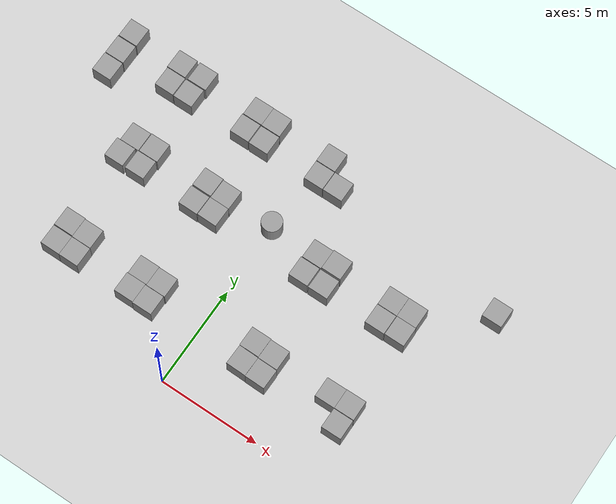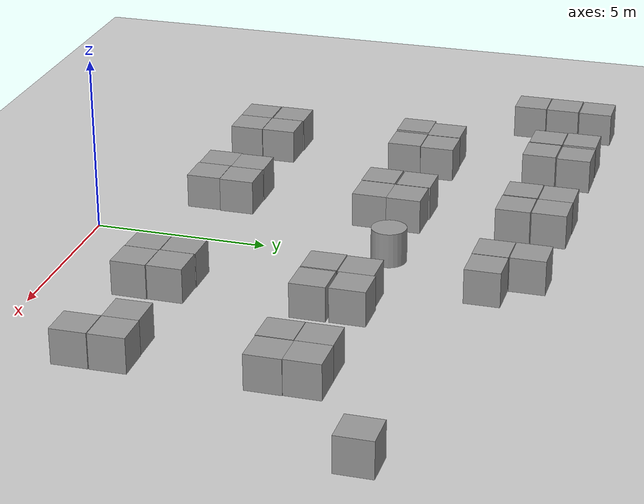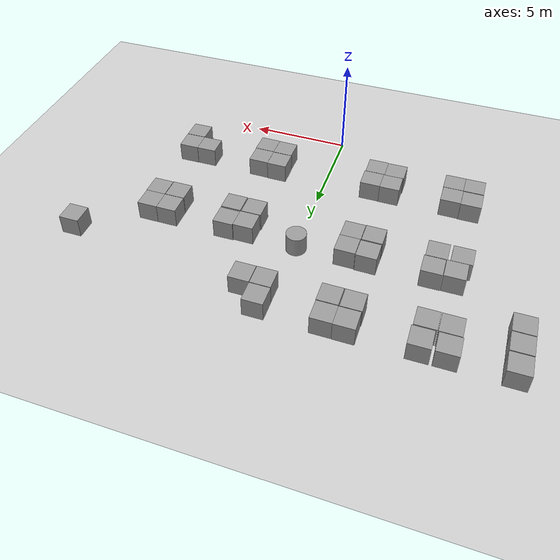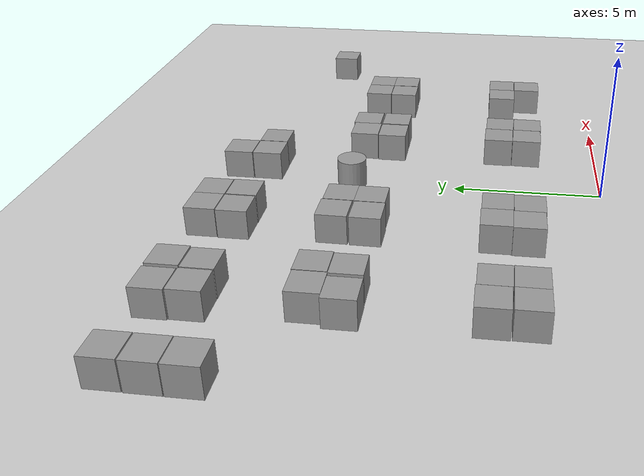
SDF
<sdf version="1.7">
 <world name="default">
  <model name="ground_plane">
   <static>1</static>
   <link name="link">
    <collision name="collision">
     <geometry><plane><normal>0 0 1</normal><size>100 100</size></plane></geometry>
     <surface>
      <contact><collide_bitmask>65535</collide_bitmask></contact>
      <friction><ode><mu>100</mu><mu2>50</mu2></ode></friction>
     </surface>
    </collision>
    <visual name="visual">
     <cast_shadows>0</cast_shadows>
     <geometry><plane><normal>0 0 1</normal><size>100 100</size></plane></geometry>
     <material>
      <script><uri>file://media/materials/scripts/gazebo.material</uri><name>Gazebo/Grey</name></script>
     </material>
    </visual>
   </link>
  </model>
  <model name="unit_box">
   <pose>7.49314 7.5498 0.5 0 0 -0.000638</pose>
   <link name="link">
    <inertial>
     <mass>1</mass>
     <inertia>
      <ixx>0.166667</ixx>
      <ixy>0</ixy>
      <ixz>0</ixz>
      <iyy>0.166667</iyy>
      <iyz>0</iyz>
      <izz>0.166667</izz>
     </inertia>
    </inertial>
    <collision name="collision"><geometry><box><size>1 1 1</size></box></geometry></collision>
    <visual name="visual">
     <geometry><box><size>1 1 1</size></box></geometry>
     <material>
      <script><name>Gazebo/Grey</name><uri>file://media/materials/scripts/gazebo.material</uri></script>
     </material>
    </visual>
   </link>
  </model>
  <model name="unit_box_clone_0">
   <pose>6.47181 7.5316 0.499995 1e-05 -0 -0.001722</pose>
   <link name="link">
    <inertial>
     <mass>1</mass>
     <inertia>
      <ixx>0.166667</ixx>
      <ixy>0</ixy>
      <ixz>0</ixz>
      <iyy>0.166667</iyy>
      <iyz>0</iyz>
      <izz>0.166667</izz>
     </inertia>
    </inertial>
    <collision name="collision"><geometry><box><size>1 1 1</size></box></geometry></collision>
    <visual name="visual">
     <geometry><box><size>1 1 1</size></box></geometry>
     <material>
      <script><name>Gazebo/Grey</name><uri>file://media/materials/scripts/gazebo.material</uri></script>
     </material>
    </visual>
   </link>
  </model>
  <model name="unit_box_clone_1_clone">
   <pose>7.53529 3.52339 0.499995 -0 1e-05 0.009687</pose>
   <link name="link">
    <inertial>
     <mass>1</mass>
     <inertia>
      <ixx>0.166667</ixx>
      <ixy>0</ixy>
      <ixz>0</ixz>
      <iyy>0.166667</iyy>
      <iyz>0</iyz>
      <izz>0.166667</izz>
     </inertia>
    </inertial>
    <collision name="collision"><geometry><box><size>1 1 1</size></box></geometry></collision>
    <visual name="visual">
     <geometry><box><size>1 1 1</size></box></geometry>
     <material>
      <script><name>Gazebo/Grey</name><uri>file://media/materials/scripts/gazebo.material</uri></script>
     </material>
    </visual>
   </link>
  </model>
  <model name="unit_box_clone_1_clone_clone">
   <pose>6.53542 3.50543 0.499995 -0 1e-05 0.009687</pose>
   <link name="link">
    <inertial>
     <mass>1</mass>
     <inertia>
      <ixx>0.166667</ixx>
      <ixy>0</ixy>
      <ixz>0</ixz>
      <iyy>0.166667</iyy>
      <iyz>0</iyz>
      <izz>0.166667</izz>
     </inertia>
    </inertial>
    <collision name="collision"><geometry><box><size>1 1 1</size></box></geometry></collision>
    <visual name="visual">
     <geometry><box><size>1 1 1</size></box></geometry>
     <material>
      <script><name>Gazebo/Grey</name><uri>file://media/materials/scripts/gazebo.material</uri></script>
     </material>
    </visual>
   </link>
  </model>
  <model name="unit_box_clone_1_clone_clone_0">
   <pose>7.54143 2.5029 0.499995 -0 1e-05 0.006781</pose>
   <link name="link">
    <inertial>
     <mass>1</mass>
     <inertia>
      <ixx>0.166667</ixx>
      <ixy>0</ixy>
      <ixz>0</ixz>
      <iyy>0.166667</iyy>
      <iyz>0</iyz>
      <izz>0.166667</izz>
     </inertia>
    </inertial>
    <collision name="collision"><geometry><box><size>1 1 1</size></box></geometry></collision>
    <visual name="visual">
     <geometry><box><size>1 1 1</size></box></geometry>
     <material>
      <script><name>Gazebo/Grey</name><uri>file://media/materials/scripts/gazebo.material</uri></script>
     </material>
    </visual>
   </link>
  </model>
  <model name="unit_box_clone_0_clone">
   <pose>3.49094 8.54378 0.499995 1e-05 -0 0.000131</pose>
   <link name="link">
    <inertial>
     <mass>1</mass>
     <inertia>
      <ixx>0.166667</ixx>
      <ixy>0</ixy>
      <ixz>0</ixz>
      <iyy>0.166667</iyy>
      <iyz>0</iyz>
      <izz>0.166667</izz>
     </inertia>
    </inertial>
    <collision name="collision"><geometry><box><size>1 1 1</size></box></geometry></collision>
    <visual name="visual">
     <geometry><box><size>1 1 1</size></box></geometry>
     <material>
      <script><name>Gazebo/Grey</name><uri>file://media/materials/scripts/gazebo.material</uri></script>
     </material>
    </visual>
   </link>
  </model>
  <model name="unit_box_clone_0_clone_0">
   <pose>2.49093 8.49591 0.499995 0 -1e-05 0.000131</pose>
   <link name="link">
    <inertial>
     <mass>1</mass>
     <inertia>
      <ixx>0.166667</ixx>
      <ixy>0</ixy>
      <ixz>0</ixz>
      <iyy>0.166667</iyy>
      <iyz>0</iyz>
      <izz>0.166667</izz>
     </inertia>
    </inertial>
    <collision name="collision"><geometry><box><size>1 1 1</size></box></geometry></collision>
    <visual name="visual">
     <geometry><box><size>1 1 1</size></box></geometry>
     <material>
      <script><name>Gazebo/Grey</name><uri>file://media/materials/scripts/gazebo.material</uri></script>
     </material>
    </visual>
   </link>
  </model>
  <model name="unit_box_clone_0_clone_1">
   <pose>3.50263 7.46389 0.499995 0 -1e-05 0</pose>
   <link name="link">
    <inertial>
     <mass>1</mass>
     <inertia>
      <ixx>0.166667</ixx>
      <ixy>0</ixy>
      <ixz>0</ixz>
      <iyy>0.166667</iyy>
      <iyz>0</iyz>
      <izz>0.166667</izz>
     </inertia>
    </inertial>
    <collision name="collision"><geometry><box><size>1 1 1</size></box></geometry></collision>
    <visual name="visual">
     <geometry><box><size>1 1 1</size></box></geometry>
     <material>
      <script><name>Gazebo/Grey</name><uri>file://media/materials/scripts/gazebo.material</uri></script>
     </material>
    </visual>
   </link>
  </model>
  <model name="unit_box_clone_0_clone_2">
   <pose>2.45095 7.46934 0.499995 1e-05 -0 0</pose>
   <link name="link">
    <inertial>
     <mass>1</mass>
     <inertia>
      <ixx>0.166667</ixx>
      <ixy>0</ixy>
      <ixz>0</ixz>
      <iyy>0.166667</iyy>
      <iyz>0</iyz>
      <izz>0.166667</izz>
     </inertia>
    </inertial>
    <collision name="collision"><geometry><box><size>1 1 1</size></box></geometry></collision>
    <visual name="visual">
     <geometry><box><size>1 1 1</size></box></geometry>
     <material>
      <script><name>Gazebo/Grey</name><uri>file://media/materials/scripts/gazebo.material</uri></script>
     </material>
    </visual>
   </link>
  </model>
  <model name="unit_box_clone_0_clone_3">
   <pose>3.5212 3.52929 0.499995 0 -1e-05 -0.007133</pose>
   <link name="link">
    <inertial>
     <mass>1</mass>
     <inertia>
      <ixx>0.166667</ixx>
      <ixy>0</ixy>
      <ixz>0</ixz>
      <iyy>0.166667</iyy>
      <iyz>0</iyz>
      <izz>0.166667</izz>
     </inertia>
    </inertial>
    <collision name="collision"><geometry><box><size>1 1 1</size></box></geometry></collision>
    <visual name="visual">
     <geometry><box><size>1 1 1</size></box></geometry>
     <material>
      <script><name>Gazebo/Grey</name><uri>file://media/materials/scripts/gazebo.material</uri></script>
     </material>
    </visual>
   </link>
  </model>
  <model name="unit_box_clone_0_clone_4">
   <pose>3.52985 2.51505 0.499995 -1e-05 -0 -0.015038</pose>
   <link name="link">
    <inertial>
     <mass>1</mass>
     <inertia>
      <ixx>0.166667</ixx>
      <ixy>0</ixy>
      <ixz>0</ixz>
      <iyy>0.166667</iyy>
      <iyz>0</iyz>
      <izz>0.166667</izz>
     </inertia>
    </inertial>
    <collision name="collision"><geometry><box><size>1 1 1</size></box></geometry></collision>
    <visual name="visual">
     <geometry><box><size>1 1 1</size></box></geometry>
     <material>
      <script><name>Gazebo/Grey</name><uri>file://media/materials/scripts/gazebo.material</uri></script>
     </material>
    </visual>
   </link>
  </model>
  <model name="unit_box_clone_0_clone_5">
   <pose>2.51928 3.55752 0.499995 1e-05 0 -0.004979</pose>
   <link name="link">
    <inertial>
     <mass>1</mass>
     <inertia>
      <ixx>0.166667</ixx>
      <ixy>0</ixy>
      <ixz>0</ixz>
      <iyy>0.166667</iyy>
      <iyz>0</iyz>
      <izz>0.166667</izz>
     </inertia>
    </inertial>
    <collision name="collision"><geometry><box><size>1 1 1</size></box></geometry></collision>
    <visual name="visual">
     <geometry><box><size>1 1 1</size></box></geometry>
     <material>
      <script><name>Gazebo/Grey</name><uri>file://media/materials/scripts/gazebo.material</uri></script>
     </material>
    </visual>
   </link>
  </model>
  <model name="unit_box_clone_0_clone_6">
   <pose>2.52846 2.5417 0.499995 0 -1e-05 -0.018248</pose>
   <link name="link">
    <inertial>
     <mass>1</mass>
     <inertia>
      <ixx>0.166667</ixx>
      <ixy>0</ixy>
      <ixz>0</ixz>
      <iyy>0.166667</iyy>
      <iyz>0</iyz>
      <izz>0.166667</izz>
     </inertia>
    </inertial>
    <collision name="collision"><geometry><box><size>1 1 1</size></box></geometry></collision>
    <visual name="visual">
     <geometry><box><size>1 1 1</size></box></geometry>
     <material>
      <script><name>Gazebo/Grey</name><uri>file://media/materials/scripts/gazebo.material</uri></script>
     </material>
    </visual>
   </link>
  </model>
  <model name="unit_box_clone_0_clone_15">
   <pose>-2.48703 8.50765 0.499995 0 -1e-05 -0.008055</pose>
   <link name="link">
    <inertial>
     <mass>1</mass>
     <inertia>
      <ixx>0.166667</ixx>
      <ixy>0</ixy>
      <ixz>0</ixz>
      <iyy>0.166667</iyy>
      <iyz>0</iyz>
      <izz>0.166667</izz>
     </inertia>
    </inertial>
    <collision name="collision"><geometry><box><size>1 1 1</size></box></geometry></collision>
    <visual name="visual">
     <geometry><box><size>1 1 1</size></box></geometry>
     <material>
      <script><name>Gazebo/Grey</name><uri>file://media/materials/scripts/gazebo.material</uri></script>
     </material>
    </visual>
   </link>
  </model>
  <model name="unit_box_clone_0_clone_16">
   <pose>-2.50538 7.5076 0.499995 0 -1e-05 -0.008385</pose>
   <link name="link">
    <inertial>
     <mass>1</mass>
     <inertia>
      <ixx>0.166667</ixx>
      <ixy>0</ixy>
      <ixz>0</ixz>
      <iyy>0.166667</iyy>
      <iyz>0</iyz>
      <izz>0.166667</izz>
     </inertia>
    </inertial>
    <collision name="collision"><geometry><box><size>1 1 1</size></box></geometry></collision>
    <visual name="visual">
     <geometry><box><size>1 1 1</size></box></geometry>
     <material>
      <script><name>Gazebo/Grey</name><uri>file://media/materials/scripts/gazebo.material</uri></script>
     </material>
    </visual>
   </link>
  </model>
  <model name="unit_box_clone_0_clone_17">
   <pose>-3.50516 8.55328 0.499995 0 -1e-05 -0.009167</pose>
   <link name="link">
    <inertial>
     <mass>1</mass>
     <inertia>
      <ixx>0.166667</ixx>
      <ixy>0</ixy>
      <ixz>0</ixz>
      <iyy>0.166667</iyy>
      <iyz>0</iyz>
      <izz>0.166667</izz>
     </inertia>
    </inertial>
    <collision name="collision"><geometry><box><size>1 1 1</size></box></geometry></collision>
    <visual name="visual">
     <geometry><box><size>1 1 1</size></box></geometry>
     <material>
      <script><name>Gazebo/Grey</name><uri>file://media/materials/scripts/gazebo.material</uri></script>
     </material>
    </visual>
   </link>
  </model>
  <model name="unit_box_clone_0_clone_18">
   <pose>-3.52598 7.49579 0.499995 -1e-05 -0 -0.009373</pose>
   <link name="link">
    <inertial>
     <mass>1</mass>
     <inertia>
      <ixx>0.166667</ixx>
      <ixy>0</ixy>
      <ixz>0</ixz>
      <iyy>0.166667</iyy>
      <iyz>0</iyz>
      <izz>0.166667</izz>
     </inertia>
    </inertial>
    <collision name="collision"><geometry><box><size>1 1 1</size></box></geometry></collision>
    <visual name="visual">
     <geometry><box><size>1 1 1</size></box></geometry>
     <material>
      <script><name>Gazebo/Grey</name><uri>file://media/materials/scripts/gazebo.material</uri></script>
     </material>
    </visual>
   </link>
  </model>
  <model name="unit_box_clone_0_clone_16_clone">
   <pose>-2.46141 3.5011 0.499995 -0 -1e-05 0.00397</pose>
   <link name="link">
    <inertial>
     <mass>1</mass>
     <inertia>
      <ixx>0.166667</ixx>
      <ixy>0</ixy>
      <ixz>0</ixz>
      <iyy>0.166667</iyy>
      <iyz>0</iyz>
      <izz>0.166667</izz>
     </inertia>
    </inertial>
    <collision name="collision"><geometry><box><size>1 1 1</size></box></geometry></collision>
    <visual name="visual">
     <geometry><box><size>1 1 1</size></box></geometry>
     <material>
      <script><name>Gazebo/Grey</name><uri>file://media/materials/scripts/gazebo.material</uri></script>
     </material>
    </visual>
   </link>
  </model>
  <model name="unit_box_clone_0_clone_16_clone_0">
   <pose>-2.4961 2.4925 0.499995 -0 -1e-05 0.004518</pose>
   <link name="link">
    <inertial>
     <mass>1</mass>
     <inertia>
      <ixx>0.166667</ixx>
      <ixy>0</ixy>
      <ixz>0</ixz>
      <iyy>0.166667</iyy>
      <iyz>0</iyz>
      <izz>0.166667</izz>
     </inertia>
    </inertial>
    <collision name="collision"><geometry><box><size>1 1 1</size></box></geometry></collision>
    <visual name="visual">
     <geometry><box><size>1 1 1</size></box></geometry>
     <material>
      <script><name>Gazebo/Grey</name><uri>file://media/materials/scripts/gazebo.material</uri></script>
     </material>
    </visual>
   </link>
  </model>
  <model name="unit_box_clone_0_clone_16_clone_1">
   <pose>-3.46149 3.5153 0.499995 -1e-05 0 0.00397</pose>
   <link name="link">
    <inertial>
     <mass>1</mass>
     <inertia>
      <ixx>0.166667</ixx>
      <ixy>0</ixy>
      <ixz>0</ixz>
      <iyy>0.166667</iyy>
      <iyz>0</iyz>
      <izz>0.166667</izz>
     </inertia>
    </inertial>
    <collision name="collision"><geometry><box><size>1 1 1</size></box></geometry></collision>
    <visual name="visual">
     <geometry><box><size>1 1 1</size></box></geometry>
     <material>
      <script><name>Gazebo/Grey</name><uri>file://media/materials/scripts/gazebo.material</uri></script>
     </material>
    </visual>
   </link>
  </model>
  <model name="unit_box_clone_0_clone_16_clone_2">
   <pose>-3.49621 2.51482 0.499995 0 1e-05 0.004521</pose>
   <link name="link">
    <inertial>
     <mass>1</mass>
     <inertia>
      <ixx>0.166667</ixx>
      <ixy>0</ixy>
      <ixz>0</ixz>
      <iyy>0.166667</iyy>
      <iyz>0</iyz>
      <izz>0.166667</izz>
     </inertia>
    </inertial>
    <collision name="collision"><geometry><box><size>1 1 1</size></box></geometry></collision>
    <visual name="visual">
     <geometry><box><size>1 1 1</size></box></geometry>
     <material>
      <script><name>Gazebo/Grey</name><uri>file://media/materials/scripts/gazebo.material</uri></script>
     </material>
    </visual>
   </link>
  </model>
  <model name="unit_box_clone_0_clone_16_clone_3">
   <pose>-6.4514 8.53997 0.499995 1e-05 -0 0.003505</pose>
   <link name="link">
    <inertial>
     <mass>1</mass>
     <inertia>
      <ixx>0.166667</ixx>
      <ixy>0</ixy>
      <ixz>0</ixz>
      <iyy>0.166667</iyy>
      <iyz>0</iyz>
      <izz>0.166667</izz>
     </inertia>
    </inertial>
    <collision name="collision"><geometry><box><size>1 1 1</size></box></geometry></collision>
    <visual name="visual">
     <geometry><box><size>1 1 1</size></box></geometry>
     <material>
      <script><name>Gazebo/Grey</name><uri>file://media/materials/scripts/gazebo.material</uri></script>
     </material>
    </visual>
   </link>
  </model>
  <model name="unit_box_clone_0_clone_16_clone_4">
   <pose>-7.47192 8.51552 0.5 0 -0 0.005021</pose>
   <link name="link">
    <inertial>
     <mass>1</mass>
     <inertia>
      <ixx>0.166667</ixx>
      <ixy>0</ixy>
      <ixz>0</ixz>
      <iyy>0.166667</iyy>
      <iyz>0</iyz>
      <izz>0.166667</izz>
     </inertia>
    </inertial>
    <collision name="collision"><geometry><box><size>1 1 1</size></box></geometry></collision>
    <visual name="visual">
     <geometry><box><size>1 1 1</size></box></geometry>
     <material>
      <script><name>Gazebo/Grey</name><uri>file://media/materials/scripts/gazebo.material</uri></script>
     </material>
    </visual>
   </link>
  </model>
  <model name="unit_box_clone_0_clone_16_clone_5">
   <pose>-6.49815 7.5204 0.499995 1e-05 -0 0.005103</pose>
   <link name="link">
    <inertial>
     <mass>1</mass>
     <inertia>
      <ixx>0.166667</ixx>
      <ixy>0</ixy>
      <ixz>0</ixz>
      <iyy>0.166667</iyy>
      <iyz>0</iyz>
      <izz>0.166667</izz>
     </inertia>
    </inertial>
    <collision name="collision"><geometry><box><size>1 1 1</size></box></geometry></collision>
    <visual name="visual">
     <geometry><box><size>1 1 1</size></box></geometry>
     <material>
      <script><name>Gazebo/Grey</name><uri>file://media/materials/scripts/gazebo.material</uri></script>
     </material>
    </visual>
   </link>
  </model>
  <model name="unit_box_clone_0_clone_16_clone_6">
   <pose>-7.63286 7.50642 0.499995 1e-05 -0 0.00346</pose>
   <link name="link">
    <inertial>
     <mass>1</mass>
     <inertia>
      <ixx>0.166667</ixx>
      <ixy>0</ixy>
      <ixz>0</ixz>
      <iyy>0.166667</iyy>
      <iyz>0</iyz>
      <izz>0.166667</izz>
     </inertia>
    </inertial>
    <collision name="collision"><geometry><box><size>1 1 1</size></box></geometry></collision>
    <visual name="visual">
     <geometry><box><size>1 1 1</size></box></geometry>
     <material>
      <script><name>Gazebo/Grey</name><uri>file://media/materials/scripts/gazebo.material</uri></script>
     </material>
    </visual>
   </link>
  </model>
  <model name="unit_box_clone_0_clone_16_clone_7">
   <pose>-6.51474 3.49543 0.499995 0 -1e-05 0</pose>
   <link name="link">
    <inertial>
     <mass>1</mass>
     <inertia>
      <ixx>0.166667</ixx>
      <ixy>0</ixy>
      <ixz>0</ixz>
      <iyy>0.166667</iyy>
      <iyz>0</iyz>
      <izz>0.166667</izz>
     </inertia>
    </inertial>
    <collision name="collision"><geometry><box><size>1 1 1</size></box></geometry></collision>
    <visual name="visual">
     <geometry><box><size>1 1 1</size></box></geometry>
     <material>
      <script><name>Gazebo/Grey</name><uri>file://media/materials/scripts/gazebo.material</uri></script>
     </material>
    </visual>
   </link>
  </model>
  <model name="unit_box_clone_0_clone_16_clone_8">
   <pose>-6.50198 2.48517 0.499995 0 -1e-05 6e-06</pose>
   <link name="link">
    <inertial>
     <mass>1</mass>
     <inertia>
      <ixx>0.166667</ixx>
      <ixy>0</ixy>
      <ixz>0</ixz>
      <iyy>0.166667</iyy>
      <iyz>0</iyz>
      <izz>0.166667</izz>
     </inertia>
    </inertial>
    <collision name="collision"><geometry><box><size>1 1 1</size></box></geometry></collision>
    <visual name="visual">
     <geometry><box><size>1 1 1</size></box></geometry>
     <material>
      <script><name>Gazebo/Grey</name><uri>file://media/materials/scripts/gazebo.material</uri></script>
     </material>
    </visual>
   </link>
  </model>
  <model name="unit_box_clone_0_clone_16_clone_9">
   <pose>-7.51602 3.52225 0.499995 0 -1e-05 0</pose>
   <link name="link">
    <inertial>
     <mass>1</mass>
     <inertia>
      <ixx>0.166667</ixx>
      <ixy>0</ixy>
      <ixz>0</ixz>
      <iyy>0.166667</iyy>
      <iyz>0</iyz>
      <izz>0.166667</izz>
     </inertia>
    </inertial>
    <collision name="collision"><geometry><box><size>1 1 1</size></box></geometry></collision>
    <visual name="visual">
     <geometry><box><size>1 1 1</size></box></geometry>
     <material>
      <script><name>Gazebo/Grey</name><uri>file://media/materials/scripts/gazebo.material</uri></script>
     </material>
    </visual>
   </link>
  </model>
  <model name="unit_box_clone_0_clone_16_clone_10">
   <pose>-7.50198 2.48517 0.499995 -1e-05 -0 1e-06</pose>
   <link name="link">
    <inertial>
     <mass>1</mass>
     <inertia>
      <ixx>0.166667</ixx>
      <ixy>0</ixy>
      <ixz>0</ixz>
      <iyy>0.166667</iyy>
      <iyz>0</iyz>
      <izz>0.166667</izz>
     </inertia>
    </inertial>
    <collision name="collision"><geometry><box><size>1 1 1</size></box></geometry></collision>
    <visual name="visual">
     <geometry><box><size>1 1 1</size></box></geometry>
     <material>
      <script><name>Gazebo/Grey</name><uri>file://media/materials/scripts/gazebo.material</uri></script>
     </material>
    </visual>
   </link>
  </model>
  <model name="unit_box_clone_2">
   <pose>10.555 10.6918 0.5 0 -0 0</pose>
   <link name="link">
    <inertial>
     <mass>1</mass>
     <inertia>
      <ixx>0.166667</ixx>
      <ixy>0</ixy>
      <ixz>0</ixz>
      <iyy>0.166667</iyy>
      <iyz>0</iyz>
      <izz>0.166667</izz>
     </inertia>
    </inertial>
    <collision name="collision"><geometry><box><size>1 1 1</size></box></geometry></collision>
    <visual name="visual">
     <geometry><box><size>1 1 1</size></box></geometry>
     <material>
      <script><name>Gazebo/Grey</name><uri>file://media/materials/scripts/gazebo.material</uri></script>
     </material>
    </visual>
   </link>
  </model>
  <model name="unit_box_clone_3">
   <pose>-10.5752 10.6262 0.499995 1e-05 -0 0.002663</pose>
   <link name="link">
    <inertial>
     <mass>1</mass>
     <inertia>
      <ixx>0.166667</ixx>
      <ixy>0</ixy>
      <ixz>0</ixz>
      <iyy>0.166667</iyy>
      <iyz>0</iyz>
      <izz>0.166667</izz>
     </inertia>
    </inertial>
    <collision name="collision"><geometry><box><size>1 1 1</size></box></geometry></collision>
    <visual name="visual">
     <geometry><box><size>1 1 1</size></box></geometry>
     <material>
      <script><name>Gazebo/Grey</name><uri>file://media/materials/scripts/gazebo.material</uri></script>
     </material>
    </visual>
   </link>
  </model>
  <model name="unit_box_0">
   <pose>1.46652 11.6604 0.499995 0 -1e-05 0</pose>
   <link name="link">
    <inertial>
     <mass>1</mass>
     <inertia>
      <ixx>0.166667</ixx>
      <ixy>0</ixy>
      <ixz>0</ixz>
      <iyy>0.166667</iyy>
      <iyz>0</iyz>
      <izz>0.166667</izz>
     </inertia>
    </inertial>
    <collision name="collision"><geometry><box><size>1 1 1</size></box></geometry></collision>
    <visual name="visual">
     <geometry><box><size>1 1 1</size></box></geometry>
     <material>
      <script><name>Gazebo/Grey</name><uri>file://media/materials/scripts/gazebo.material</uri></script>
     </material>
    </visual>
   </link>
  </model>
  <model name="unit_box_0_clone">
   <pose>0.448288 11.6505 0.499995 1e-05 -0 -8.7e-05</pose>
   <link name="link">
    <inertial>
     <mass>1</mass>
     <inertia>
      <ixx>0.166667</ixx>
      <ixy>0</ixy>
      <ixz>0</ixz>
      <iyy>0.166667</iyy>
      <iyz>0</iyz>
      <izz>0.166667</izz>
     </inertia>
    </inertial>
    <collision name="collision"><geometry><box><size>1 1 1</size></box></geometry></collision>
    <visual name="visual">
     <geometry><box><size>1 1 1</size></box></geometry>
     <material>
      <script><name>Gazebo/Grey</name><uri>file://media/materials/scripts/gazebo.material</uri></script>
     </material>
    </visual>
   </link>
  </model>
  <model name="unit_box_0_clone_8_clone">
   <pose>-2.57326 11.6556 0.499995 1e-05 -0 0</pose>
   <link name="link">
    <inertial>
     <mass>1</mass>
     <inertia>
      <ixx>0.166667</ixx>
      <ixy>0</ixy>
      <ixz>0</ixz>
      <iyy>0.166667</iyy>
      <iyz>0</iyz>
      <izz>0.166667</izz>
     </inertia>
    </inertial>
    <collision name="collision"><geometry><box><size>1 1 1</size></box></geometry></collision>
    <visual name="visual">
     <geometry><box><size>1 1 1</size></box></geometry>
     <material>
      <script><name>Gazebo/Grey</name><uri>file://media/materials/scripts/gazebo.material</uri></script>
     </material>
    </visual>
   </link>
  </model>
  <model name="unit_box_0_clone_8_clone_0">
   <pose>-3.61415 11.665 0.499995 0 -1e-05 0</pose>
   <link name="link">
    <inertial>
     <mass>1</mass>
     <inertia>
      <ixx>0.166667</ixx>
      <ixy>0</ixy>
      <ixz>0</ixz>
      <iyy>0.166667</iyy>
      <iyz>0</iyz>
      <izz>0.166667</izz>
     </inertia>
    </inertial>
    <collision name="collision"><geometry><box><size>1 1 1</size></box></geometry></collision>
    <visual name="visual">
     <geometry><box><size>1 1 1</size></box></geometry>
     <material>
      <script><name>Gazebo/Grey</name><uri>file://media/materials/scripts/gazebo.material</uri></script>
     </material>
    </visual>
   </link>
  </model>
  <model name="unit_box_0_clone_8_clone_1">
   <pose>-6.72734 11.6218 0.499995 0 1e-05 0</pose>
   <link name="link">
    <inertial>
     <mass>1</mass>
     <inertia>
      <ixx>0.166667</ixx>
      <ixy>0</ixy>
      <ixz>0</ixz>
      <iyy>0.166667</iyy>
      <iyz>0</iyz>
      <izz>0.166667</izz>
     </inertia>
    </inertial>
    <collision name="collision"><geometry><box><size>1 1 1</size></box></geometry></collision>
    <visual name="visual">
     <geometry><box><size>1 1 1</size></box></geometry>
     <material>
      <script><name>Gazebo/Grey</name><uri>file://media/materials/scripts/gazebo.material</uri></script>
     </material>
    </visual>
   </link>
  </model>
  <model name="unit_box_0_clone_8_clone_2">
   <pose>-7.76533 11.6314 0.499995 1e-05 -0 -0.000736</pose>
   <link name="link">
    <inertial>
     <mass>1</mass>
     <inertia>
      <ixx>0.166667</ixx>
      <ixy>0</ixy>
      <ixz>0</ixz>
      <iyy>0.166667</iyy>
      <iyz>0</iyz>
      <izz>0.166667</izz>
     </inertia>
    </inertial>
    <collision name="collision"><geometry><box><size>1 1 1</size></box></geometry></collision>
    <visual name="visual">
     <geometry><box><size>1 1 1</size></box></geometry>
     <material>
      <script><name>Gazebo/Grey</name><uri>file://media/materials/scripts/gazebo.material</uri></script>
     </material>
    </visual>
   </link>
  </model>
  <model name="unit_cylinder">
   <pose>-0.053496 8.60262 0.499994 -3e-06 -2e-06 -0.030489</pose>
   <link name="link">
    <inertial>
     <mass>1</mass>
     <inertia><ixx>0.145833</ixx><ixy>0</ixy><ixz>0</ixz><iyy>0.145833</iyy><iyz>0</iyz><izz>0.125</izz></inertia>
    </inertial>
    <collision name="collision">
     <geometry><cylinder><radius>0.5</radius><length>1</length></cylinder></geometry>
    </collision>
    <visual name="visual">
     <geometry><cylinder><radius>0.5</radius><length>1</length></cylinder></geometry>
     <material>
      <script><name>Gazebo/Grey</name><uri>file://media/materials/scripts/gazebo.material</uri></script>
     </material>
    </visual>
   </link>
  </model>
  <model name="unit_box_clone_3_clone">
   <pose>-10.5728 11.6524 0.499995 1e-05 -0 0.002663</pose>
   <link name="link">
    <inertial>
     <mass>1</mass>
     <inertia>
      <ixx>0.166667</ixx>
      <ixy>0</ixy>
      <ixz>0</ixz>
      <iyy>0.166667</iyy>
      <iyz>0</iyz>
      <izz>0.166667</izz>
     </inertia>
    </inertial>
    <collision name="collision"><geometry><box><size>1 1 1</size></box></geometry></collision>
    <visual name="visual">
     <geometry><box><size>1 1 1</size></box></geometry>
     <material>
      <script><name>Gazebo/Grey</name><uri>file://media/materials/scripts/gazebo.material</uri></script>
     </material>
    </visual>
   </link>
  </model>
  <model name="unit_box_clone_3_clone_0">
   <pose>-10.5655 12.6887 0.499995 0 -1e-05 0.002663</pose>
   <link name="link">
    <inertial>
     <mass>1</mass>
     <inertia>
      <ixx>0.166667</ixx>
      <ixy>0</ixy>
      <ixz>0</ixz>
      <iyy>0.166667</iyy>
      <iyz>0</iyz>
      <izz>0.166667</izz>
     </inertia>
    </inertial>
    <collision name="collision"><geometry><box><size>1 1 1</size></box></geometry></collision>
    <visual name="visual">
     <geometry><box><size>1 1 1</size></box></geometry>
     <material>
      <script><name>Gazebo/Grey</name><uri>file://media/materials/scripts/gazebo.material</uri></script>
     </material>
    </visual>
   </link>
  </model>
  <model name="unit_box_clone_3_clone_1">
   <pose>-7.80366 12.658 0.499995 1e-05 -0 0.002663</pose>
   <link name="link">
    <inertial>
     <mass>1</mass>
     <inertia>
      <ixx>0.166667</ixx>
      <ixy>0</ixy>
      <ixz>0</ixz>
      <iyy>0.166667</iyy>
      <iyz>0</iyz>
      <izz>0.166667</izz>
     </inertia>
    </inertial>
    <collision name="collision"><geometry><box><size>1 1 1</size></box></geometry></collision>
    <visual name="visual">
     <geometry><box><size>1 1 1</size></box></geometry>
     <material>
      <script><name>Gazebo/Grey</name><uri>file://media/materials/scripts/gazebo.material</uri></script>
     </material>
    </visual>
   </link>
  </model>
  <model name="unit_box_clone_3_clone_2">
   <pose>-3.59056 12.6927 0.499995 0 -9e-06 0.001805</pose>
   <link name="link">
    <inertial>
     <mass>1</mass>
     <inertia>
      <ixx>0.166667</ixx>
      <ixy>0</ixy>
      <ixz>0</ixz>
      <iyy>0.166667</iyy>
      <iyz>0</iyz>
      <izz>0.166667</izz>
     </inertia>
    </inertial>
    <collision name="collision"><geometry><box><size>1 1 1</size></box></geometry></collision>
    <visual name="visual">
     <geometry><box><size>1 1 1</size></box></geometry>
     <material>
      <script><name>Gazebo/Grey</name><uri>file://media/materials/scripts/gazebo.material</uri></script>
     </material>
    </visual>
   </link>
  </model>
  <model name="unit_box_clone_3_clone_3">
   <pose>0.440156 12.6744 0.499995 1e-05 -0 0.002663</pose>
   <link name="link">
    <inertial>
     <mass>1</mass>
     <inertia>
      <ixx>0.166667</ixx>
      <ixy>0</ixy>
      <ixz>0</ixz>
      <iyy>0.166667</iyy>
      <iyz>0</iyz>
      <izz>0.166667</izz>
     </inertia>
    </inertial>
    <collision name="collision"><geometry><box><size>1 1 1</size></box></geometry></collision>
    <visual name="visual">
     <geometry><box><size>1 1 1</size></box></geometry>
     <material>
      <script><name>Gazebo/Grey</name><uri>file://media/materials/scripts/gazebo.material</uri></script>
     </material>
    </visual>
   </link>
  </model>
  <model name="unit_box_clone_3_clone_4">
   <pose>-2.59053 12.6849 0.499995 0 1e-05 0.001807</pose>
   <link name="link">
    <inertial>
     <mass>1</mass>
     <inertia>
      <ixx>0.166667</ixx>
      <ixy>0</ixy>
      <ixz>0</ixz>
      <iyy>0.166667</iyy>
      <iyz>0</iyz>
      <izz>0.166667</izz>
     </inertia>
    </inertial>
    <collision name="collision"><geometry><box><size>1 1 1</size></box></geometry></collision>
    <visual name="visual">
     <geometry><box><size>1 1 1</size></box></geometry>
     <material>
      <script><name>Gazebo/Grey</name><uri>file://media/materials/scripts/gazebo.material</uri></script>
     </material>
    </visual>
   </link>
  </model>
  <model name="unit_box_clone_3_clone_18">
   <pose>-6.66946 12.6661 0.499995 -1e-05 -0 0.002663</pose>
   <link name="link">
    <inertial>
     <mass>1</mass>
     <inertia>
      <ixx>0.166667</ixx>
      <ixy>0</ixy>
      <ixz>0</ixz>
      <iyy>0.166667</iyy>
      <iyz>0</iyz>
      <izz>0.166667</izz>
     </inertia>
    </inertial>
    <collision name="collision"><geometry><box><size>1 1 1</size></box></geometry></collision>
    <visual name="visual">
     <geometry><box><size>1 1 1</size></box></geometry>
     <material>
      <script><name>Gazebo/Grey</name><uri>file://media/materials/scripts/gazebo.material</uri></script>
     </material>
    </visual>
   </link>
  </model>
  <model name="unit_box_clone_1_clone_0">
   <pose>6.476 8.54643 0.499995 1e-05 -0 -1.9e-05</pose>
   <link name="link">
    <inertial>
     <mass>1</mass>
     <inertia>
      <ixx>0.166667</ixx>
      <ixy>0</ixy>
      <ixz>0</ixz>
      <iyy>0.166667</iyy>
      <iyz>0</iyz>
      <izz>0.166667</izz>
     </inertia>
    </inertial>
    <collision name="collision"><geometry><box><size>1 1 1</size></box></geometry></collision>
    <visual name="visual">
     <geometry><box><size>1 1 1</size></box></geometry>
     <material>
      <script><name>Gazebo/Grey</name><uri>file://media/materials/scripts/gazebo.material</uri></script>
     </material>
    </visual>
   </link>
  </model>
  <model name="unit_box_clone_1_clone_1">
   <pose>7.47681 8.54986 0.499995 -0 1e-05 -0.000679</pose>
   <link name="link">
    <inertial>
     <mass>1</mass>
     <inertia>
      <ixx>0.166667</ixx>
      <ixy>0</ixy>
      <ixz>0</ixz>
      <iyy>0.166667</iyy>
      <iyz>0</iyz>
      <izz>0.166667</izz>
     </inertia>
    </inertial>
    <collision name="collision"><geometry><box><size>1 1 1</size></box></geometry></collision>
    <visual name="visual">
     <geometry><box><size>1 1 1</size></box></geometry>
     <material>
      <script><name>Gazebo/Grey</name><uri>file://media/materials/scripts/gazebo.material</uri></script>
     </material>
    </visual>
   </link>
  </model>
 </world>
</sdf>
